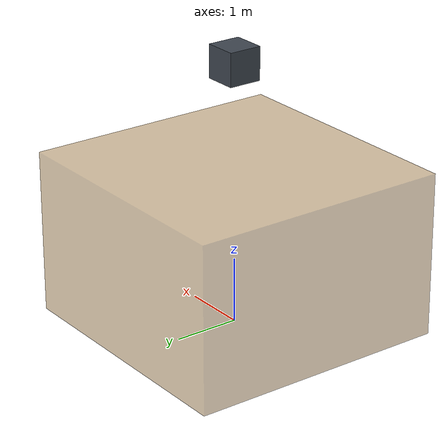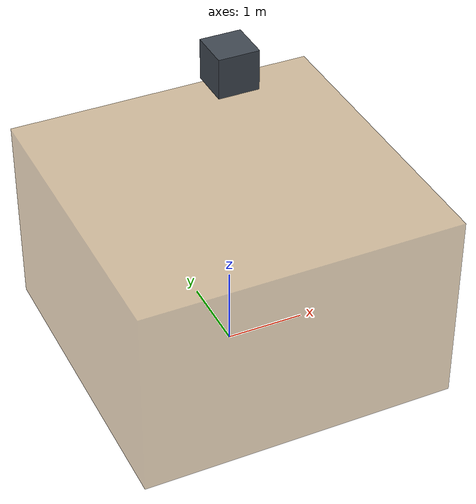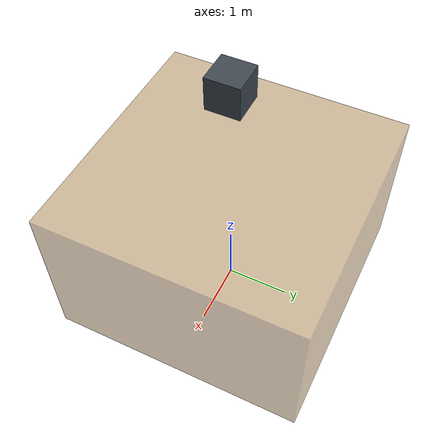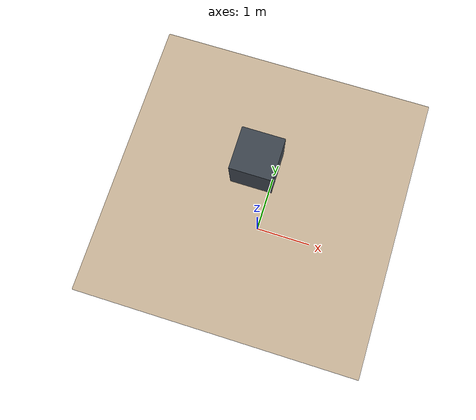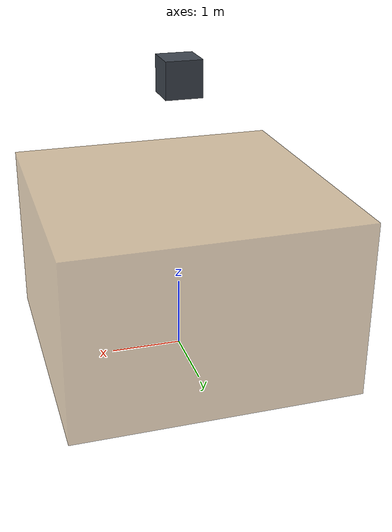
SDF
<?xml version="1.0"?>
<sdf version="1.10">
  <world name="soil_slice_collision_masks">
    <physics name="1ms" type="dart">
      <max_step_size>0.001</max_step_size>
      <real_time_factor>1.0</real_time_factor>
    </physics>
    <plugin filename="gz-sim-physics-system" name="gz::sim::systems::Physics"/>
    <plugin filename="gz-sim-user-commands-system" name="gz::sim::systems::UserCommands"/>
    <plugin filename="gz-sim-scene-broadcaster-system" name="gz::sim::systems::SceneBroadcaster"/>
    <gravity>0 0 -9.80665</gravity>

    <model name="rigid_ground">
      <static>true</static>
      <link name="link">
        <collision name="collision">
          <geometry><plane><normal>0 0 1</normal><size>20 20</size></plane></geometry>
          <surface><contact><collide_bitmask>0x01</collide_bitmask></contact></surface>
        </collision>
      </link>
    </model>

    <model name="loose_material_proxy">
      <static>true</static>
      <pose>0 0 1.25 0 0 0</pose>
      <link name="link">
        <collision name="collision">
          <geometry><box><size>4 4 2.5</size></box></geometry>
          <surface><contact><collide_bitmask>0x02</collide_bitmask></contact></surface>
        </collision>
        <visual name="visual">
          <geometry><box><size>4 4 2.5</size></box></geometry>
          <material><diffuse>0.65 0.48 0.25 0.5</diffuse></material>
        </visual>
      </link>
    </model>

    <model name="soil_slice_test_bucket">
      <pose>0 0 4 0 0 0</pose>
      <link name="bucket">
        <inertial>
          <mass>100</mass>
          <inertia><ixx>4.1667</ixx><iyy>4.1667</iyy><izz>4.1667</izz></inertia>
        </inertial>
        <collision name="collision">
          <geometry><box><size>0.5 0.5 0.5</size></box></geometry>
          <surface><contact><collide_bitmask>0x01</collide_bitmask></contact></surface>
        </collision>
        <visual name="visual">
          <geometry><box><size>0.5 0.5 0.5</size></box></geometry>
          <material><diffuse>0.25 0.28 0.32 1</diffuse></material>
        </visual>
      </link>
    </model>
  </world>
</sdf>
